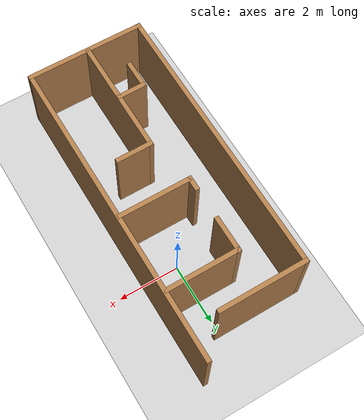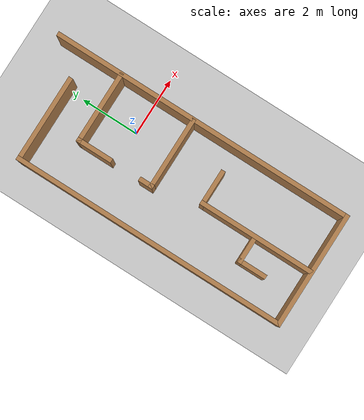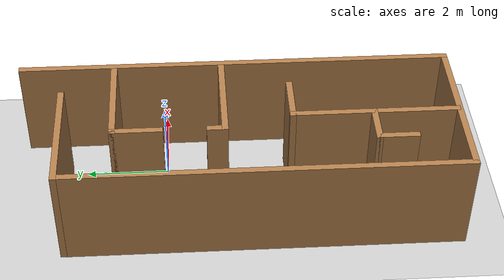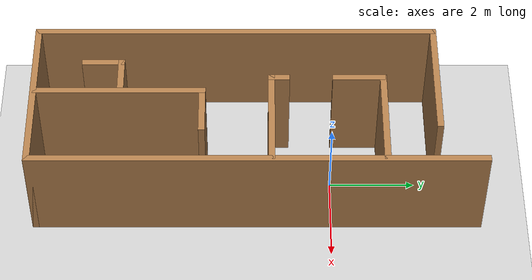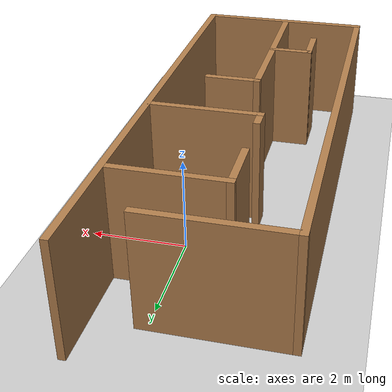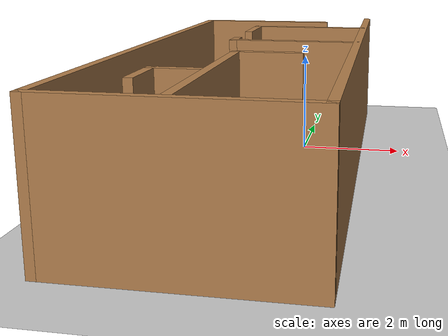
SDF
<sdf version="1.6">
 <world name="default">
  <light name="sun" type="directional">
   <pose>0 0 10 0 -0 0</pose>
   <diffuse>0.8 0.8 0.8 1</diffuse>
   <specular>0.2 0.2 0.2 1</specular>
   <attenuation>
    <range>1000</range>
    <constant>0.9</constant>
    <linear>0.01</linear>
    <quadratic>0.001</quadratic>
   </attenuation>
   <direction>-0.5 0.1 -0.9</direction>
  </light>
  <model name="ground_plane">
   <static>1</static>
   <link name="link">
    <collision name="collision">
     <geometry><plane><normal>0 0 1</normal><size>100 100</size></plane></geometry>
     <surface>
      <contact><collide_bitmask>65535</collide_bitmask></contact>
      <friction><ode><mu>100</mu><mu2>50</mu2></ode></friction>
     </surface>
    </collision>
    <visual name="visual">
     <cast_shadows>0</cast_shadows>
     <geometry><plane><normal>0 0 1</normal><size>100 100</size></plane></geometry>
     <material>
      <script><uri>file://media/materials/scripts/gazebo.material</uri><name>Gazebo/Grey</name></script>
     </material>
    </visual>
   </link>
  </model>
  <gravity>0 0 -9.8</gravity>
  <magnetic_field>6e-06 2.3e-05 -4.2e-05</magnetic_field>
  <atmosphere type="adiabatic"/>
  <physics name="default_physics" default="0" type="ode">
   <max_step_size>0.001</max_step_size>
   <real_time_factor>1</real_time_factor>
   <real_time_update_rate>1000</real_time_update_rate>
  </physics>
  <scene><ambient>0.4 0.4 0.4 1</ambient><background>0.7 0.7 0.7 1</background><shadows>1</shadows></scene>
  <audio><device>default</device></audio>
  <spherical_coordinates>
   <surface_model>EARTH_WGS84</surface_model>
   <latitude_deg>0</latitude_deg>
   <longitude_deg>0</longitude_deg>
   <elevation>0</elevation>
   <heading_deg>0</heading_deg>
  </spherical_coordinates>
  <model name="newEnv">
   <pose>-0.767662 -1.72748 0 0 0 -1.57008</pose>
   <link name="Wall_0">
    <collision name="Wall_0_Collision">
     <geometry><box><size>10.5 0.15 2.5</size></box></geometry>
     <pose>0 0 1.25 0 -0 0</pose>
    </collision>
    <visual name="Wall_0_Visual">
     <pose>0 0 1.25 0 -0 0</pose>
     <geometry><box><size>10.5 0.15 2.5</size></box></geometry>
     <material>
      <script><uri>file://media/materials/scripts/gazebo.material</uri><name>Gazebo/Wood</name></script>
      <ambient>1 1 1 1</ambient>
     </material>
     <meta><layer>0</layer></meta>
    </visual>
    <pose>-0 1.925 0 0 -0 0</pose>
   </link>
   <link name="Wall_1">
    <collision name="Wall_1_Collision">
     <geometry><box><size>4 0.15 2.5</size></box></geometry>
     <pose>0 0 1.25 0 -0 0</pose>
    </collision>
    <visual name="Wall_1_Visual">
     <pose>0 0 1.25 0 -0 0</pose>
     <geometry><box><size>4 0.15 2.5</size></box></geometry>
     <material>
      <script><uri>file://media/materials/scripts/gazebo.material</uri><name>Gazebo/Wood</name></script>
      <ambient>1 1 1 1</ambient>
     </material>
     <meta><layer>0</layer></meta>
    </visual>
    <pose>5.175 -0 0 0 -0 -1.5708</pose>
   </link>
   <link name="Wall_10">
    <collision name="Wall_10_Collision">
     <geometry><box><size>2.5 0.15 2.5</size></box></geometry>
     <pose>0 0 1.25 0 -0 0</pose>
    </collision>
    <visual name="Wall_10_Visual">
     <pose>0 0 1.25 0 -0 0</pose>
     <geometry><box><size>2.5 0.15 2.5</size></box></geometry>
     <material>
      <script><uri>file://media/materials/scripts/gazebo.material</uri><name>Gazebo/Wood</name></script>
      <ambient>1 1 1 1</ambient>
     </material>
     <meta><layer>0</layer></meta>
    </visual>
    <pose>-2.935 0.7 0 0 -0 1.5708</pose>
   </link>
   <link name="Wall_12">
    <collision name="Wall_12_Collision">
     <geometry><box><size>1.25 0.15 2.5</size></box></geometry>
     <pose>0 0 1.25 0 -0 0</pose>
    </collision>
    <visual name="Wall_12_Visual">
     <pose>0 0 1.25 0 -0 0</pose>
     <geometry><box><size>1.25 0.15 2.5</size></box></geometry>
     <material>
      <script><uri>file://media/materials/scripts/gazebo.material</uri><name>Gazebo/Wood</name></script>
      <ambient>1 1 1 1</ambient>
     </material>
     <meta><layer>0</layer></meta>
    </visual>
    <pose>-2.385 -0.475 0 0 -0 0</pose>
   </link>
   <link name="Wall_14">
    <collision name="Wall_14_Collision">
     <geometry><box><size>0.5 0.15 2.5</size></box></geometry>
     <pose>0 0 1.25 0 -0 0</pose>
    </collision>
    <visual name="Wall_14_Visual">
     <pose>0 0 1.25 0 -0 0</pose>
     <geometry><box><size>0.5 0.15 2.5</size></box></geometry>
     <material>
      <script><uri>file://media/materials/scripts/gazebo.material</uri><name>Gazebo/Wood</name></script>
      <ambient>1 1 1 1</ambient>
     </material>
     <meta><layer>0</layer></meta>
    </visual>
    <pose>-0.51 -0.475 0 0 -0 3.14159</pose>
   </link>
   <link name="Wall_16">
    <collision name="Wall_16_Collision">
     <geometry><box><size>1 0.15 2.5</size></box></geometry>
     <pose>0 0 1.25 0 -0 0</pose>
    </collision>
    <visual name="Wall_16_Visual">
     <pose>0 0 1.25 0 -0 0</pose>
     <geometry><box><size>1 0.15 2.5</size></box></geometry>
     <material>
      <script><uri>file://media/materials/scripts/gazebo.material</uri><name>Gazebo/Wood</name></script>
      <ambient>1 1 1 1</ambient>
     </material>
     <meta><layer>0</layer></meta>
    </visual>
    <pose>3.165 -0.52 0 0 -0 -1.5708</pose>
   </link>
   <link name="Wall_17">
    <collision name="Wall_17_Collision">
     <geometry><box><size>1 0.15 2.5</size></box></geometry>
     <pose>0 0 1.25 0 -0 0</pose>
    </collision>
    <visual name="Wall_17_Visual">
     <pose>0 0 1.25 0 -0 0</pose>
     <geometry><box><size>1 0.15 2.5</size></box></geometry>
     <material>
      <script><uri>file://media/materials/scripts/gazebo.material</uri><name>Gazebo/Wood</name></script>
      <ambient>1 1 1 1</ambient>
     </material>
     <meta><layer>0</layer></meta>
    </visual>
    <pose>3.59 -0.945 0 0 -0 0</pose>
   </link>
   <link name="Wall_2">
    <collision name="Wall_2_Collision">
     <geometry><box><size>9.5 0.15 2.5</size></box></geometry>
     <pose>0 0 1.25 0 -0 0</pose>
    </collision>
    <visual name="Wall_2_Visual">
     <pose>0 0 1.25 0 -0 0</pose>
     <geometry><box><size>9.5 0.15 2.5</size></box></geometry>
     <material>
      <script><uri>file://media/materials/scripts/gazebo.material</uri><name>Gazebo/Wood</name></script>
      <ambient>1 1 1 1</ambient>
     </material>
     <meta><layer>0</layer></meta>
    </visual>
    <pose>0.5 -1.925 0 0 -0 3.14159</pose>
   </link>
   <link name="Wall_3">
    <collision name="Wall_3_Collision">
     <geometry><box><size>3 0.15 2.5</size></box></geometry>
     <pose>0 0 1.25 0 -0 0</pose>
    </collision>
    <visual name="Wall_3_Visual">
     <pose>0 0 1.25 0 -0 0</pose>
     <geometry><box><size>3 0.15 2.5</size></box></geometry>
     <material>
      <script><uri>file://media/materials/scripts/gazebo.material</uri><name>Gazebo/Wood</name></script>
      <ambient>1 1 1 1</ambient>
     </material>
     <meta><layer>0</layer></meta>
    </visual>
    <pose>-4.175 -0.5 0 0 -0 1.5708</pose>
   </link>
   <link name="Wall_5">
    <collision name="Wall_5_Collision">
     <geometry><box><size>4 0.15 2.5</size></box></geometry>
     <pose>0 0 1.25 0 -0 0</pose>
    </collision>
    <visual name="Wall_5_Visual">
     <pose>0 0 1.25 0 -0 0</pose>
     <geometry><box><size>4 0.15 2.5</size></box></geometry>
     <material>
      <script><uri>file://media/materials/scripts/gazebo.material</uri><name>Gazebo/Wood</name></script>
      <ambient>1 1 1 1</ambient>
     </material>
     <meta><layer>0</layer></meta>
    </visual>
    <pose>3.19 -0.075 0 0 -0 3.14159</pose>
   </link>
   <link name="Wall_6">
    <collision name="Wall_6_Collision">
     <geometry><box><size>1.25 0.15 2.5</size></box></geometry>
     <pose>0 0 1.25 0 -0 0</pose>
    </collision>
    <visual name="Wall_6_Visual">
     <pose>0 0 1.25 0 -0 0</pose>
     <geometry><box><size>1.25 0.15 2.5</size></box></geometry>
     <material>
      <script><uri>file://media/materials/scripts/gazebo.material</uri><name>Gazebo/Wood</name></script>
      <ambient>1 1 1 1</ambient>
     </material>
     <meta><layer>0</layer></meta>
    </visual>
    <pose>1.265 0.475 0 0 -0 1.5708</pose>
   </link>
   <link name="Wall_8">
    <collision name="Wall_8_Collision">
     <geometry><box><size>2.5 0.15 2.5</size></box></geometry>
     <pose>0 0 1.25 0 -0 0</pose>
    </collision>
    <visual name="Wall_8_Visual">
     <pose>0 0 1.25 0 -0 0</pose>
     <geometry><box><size>2.5 0.15 2.5</size></box></geometry>
     <material>
      <script><uri>file://media/materials/scripts/gazebo.material</uri><name>Gazebo/Wood</name></script>
      <ambient>1 1 1 1</ambient>
     </material>
     <meta><layer>0</layer></meta>
    </visual>
    <pose>-0.335 0.7 0 0 -0 -1.5708</pose>
   </link>
   <static>1</static>
  </model>
 </world>
</sdf>
